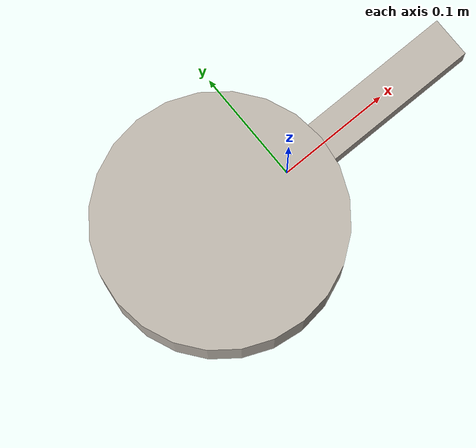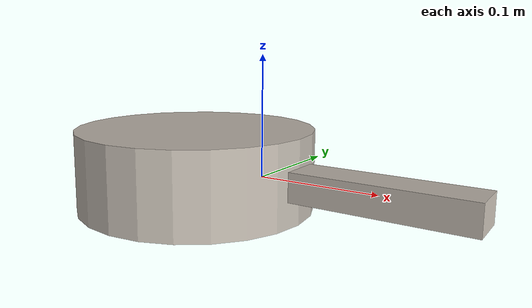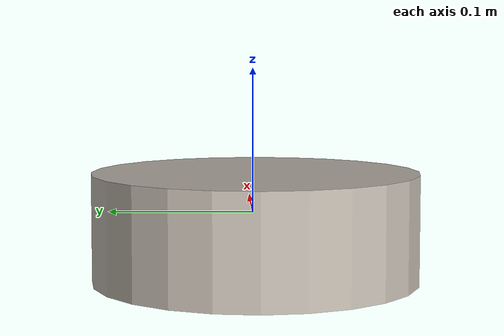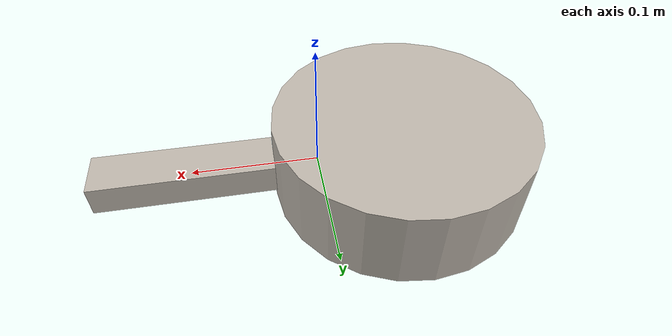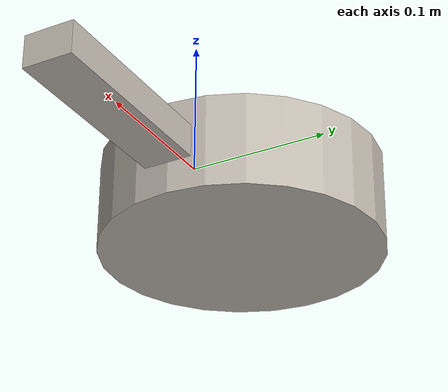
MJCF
<mujoco model="vla82_vla82_015">
  <compiler angle="radian"/>
  <asset>
    <texture name="source_texture" type="2d" file="source_texture.png"/>
    <material name="source_material" texture="source_texture" rgba="1 1 1 1"/>
  </asset>
  <default>
    <default class="visual"><geom contype="0" conaffinity="0" group="1"/></default>
    <default class="collision"><geom contype="1" conaffinity="1" group="0" density="300" friction="0.45 0.004 0.0001" solref="0.02 1" solimp="0.9 0.95 0.001"/></default>
    <default class="region"><geom contype="0" conaffinity="0" group="1" rgba="0 1 0 0" mass="0"/></default>
  </default>
  <worldbody><body><body name="object">
    <geom name="pan_body_visual" class="visual" type="cylinder" pos="-0.070 0 0" size="0.105000 0.035000" material="source_material"/>
    <geom name="pan_body_collision" class="collision" type="cylinder" pos="-0.070 0 0" size="0.105000 0.035000"/>
    <geom name="pan_handle_visual" class="visual" type="box" pos="0.105 0 0" size="0.070 0.018 0.012" material="source_material"/>
    <geom name="pan_handle_collision" class="collision" type="box" pos="0.105 0 0" size="0.070 0.018 0.012"/>
    <geom name="reg_bbox" class="region" type="box" pos="0 0 0" size="0.175000 0.105000 0.035000"/>
  </body></body></worldbody>
  <actuator/>
</mujoco>
